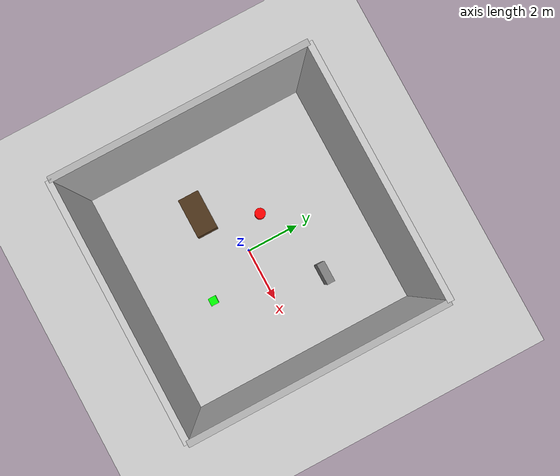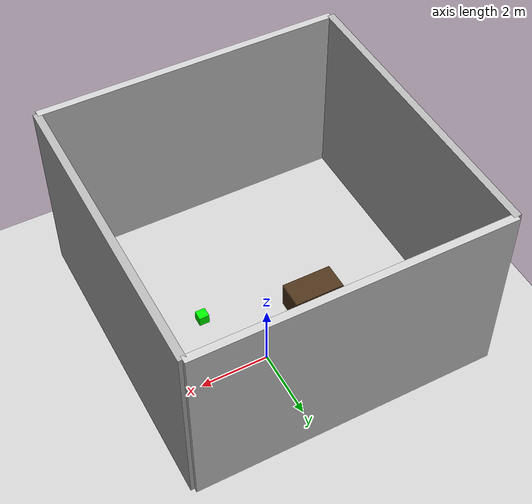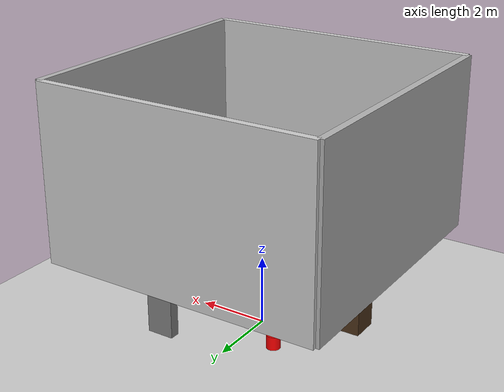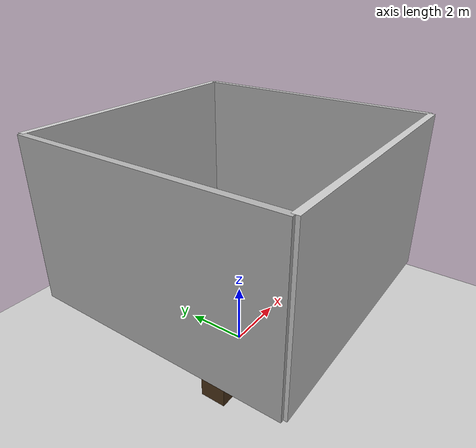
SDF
<?xml version="1.0" ?>
<sdf version="1.7">
  <world name="indoor_lab">
    <!-- Include the sun -->
    <include>
      <uri>model://sun</uri>
    </include>

    <!-- Ground plane -->
    <include>
      <uri>model://ground_plane</uri>
    </include>

    <!-- Lab room with walls -->
    <model name="lab_room">
      <pose>0 0 2.5 0 0 0</pose>
      <static>true</static>

      <!-- Back wall -->
      <link name="back_wall">
        <pose>0 -4 2.5 0 0 0</pose>
        <collision name="back_wall_collision">
          <geometry>
            <box>
              <size>8 0.2 5</size>
            </box>
          </geometry>
        </collision>
        <visual name="back_wall_visual">
          <geometry>
            <box>
              <size>8 0.2 5</size>
            </box>
          </geometry>
          <material>
            <ambient>0.8 0.8 0.8 1</ambient>
            <diffuse>0.8 0.8 0.8 1</diffuse>
          </material>
        </visual>
      </link>

      <!-- Front wall -->
      <link name="front_wall">
        <pose>0 4 2.5 0 0 3.14159</pose>
        <collision name="front_wall_collision">
          <geometry>
            <box>
              <size>8 0.2 5</size>
            </box>
          </geometry>
        </collision>
        <visual name="front_wall_visual">
          <geometry>
            <box>
              <size>8 0.2 5</size>
            </box>
          </geometry>
          <material>
            <ambient>0.8 0.8 0.8 1</ambient>
            <diffuse>0.8 0.8 0.8 1</diffuse>
          </material>
        </visual>
      </link>

      <!-- Left wall -->
      <link name="left_wall">
        <pose>-4 0 2.5 0 0 1.5708</pose>
        <collision name="left_wall_collision">
          <geometry>
            <box>
              <size>8 0.2 5</size>
            </box>
          </geometry>
        </collision>
        <visual name="left_wall_visual">
          <geometry>
            <box>
              <size>8 0.2 5</size>
            </box>
          </geometry>
          <material>
            <ambient>0.7 0.7 0.7 1</ambient>
            <diffuse>0.7 0.7 0.7 1</diffuse>
          </material>
        </visual>
      </link>

      <!-- Right wall -->
      <link name="right_wall">
        <pose>4 0 2.5 0 0 -1.5708</pose>
        <collision name="right_wall_collision">
          <geometry>
            <box>
              <size>8 0.2 5</size>
            </box>
          </geometry>
        </collision>
        <visual name="right_wall_visual">
          <geometry>
            <box>
              <size>8 0.2 5</size>
            </box>
          </geometry>
          <material>
            <ambient>0.7 0.7 0.7 1</ambient>
            <diffuse>0.7 0.7 0.7 1</diffuse>
          </material>
        </visual>
      </link>
    </model>

    <!-- Lab equipment -->
    <model name="workbench">
      <pose>-2 -1 0.5 0 0 0</pose>
      <link name="base">
        <collision name="collision">
          <geometry>
            <box>
              <size>1.5 0.8 0.8</size>
            </box>
          </geometry>
        </collision>
        <visual name="visual">
          <geometry>
            <box>
              <size>1.5 0.8 0.8</size>
            </box>
          </geometry>
          <material>
            <ambient>0.3 0.2 0.1 1</ambient>
            <diffuse>0.3 0.2 0.1 1</diffuse>
          </material>
        </visual>
      </link>
    </model>

    <model name="shelf">
      <pose>2 2 0.6 0 0 0</pose>
      <link name="base">
        <collision name="collision">
          <geometry>
            <box>
              <size>0.8 0.3 1.2</size>
            </box>
          </geometry>
        </collision>
        <visual name="visual">
          <geometry>
            <box>
              <size>0.8 0.3 1.2</size>
            </box>
          </geometry>
          <material>
            <ambient>0.5 0.5 0.5 1</ambient>
            <diffuse>0.5 0.5 0.5 1</diffuse>
          </material>
        </visual>
      </link>
    </model>

    <!-- Navigation obstacles -->
    <model name="obstacle1">
      <pose>-1 1 0.2 0 0 0</pose>
      <link name="base">
        <collision name="collision">
          <geometry>
            <cylinder>
              <radius>0.2</radius>
              <length>0.4</length>
            </cylinder>
          </geometry>
        </collision>
        <visual name="visual">
          <geometry>
            <cylinder>
              <radius>0.2</radius>
              <length>0.4</length>
            </cylinder>
          </geometry>
          <material>
            <ambient>1 0 0 1</ambient>
            <diffuse>1 0 0 1</diffuse>
          </material>
        </visual>
      </link>
    </model>

    <model name="obstacle2">
      <pose>1 -2 0.15 0 0 0</pose>
      <link name="base">
        <collision name="collision">
          <geometry>
            <box>
              <size>0.3 0.3 0.3</size>
            </box>
          </geometry>
        </collision>
        <visual name="visual">
          <geometry>
            <box>
              <size>0.3 0.3 0.3</size>
            </box>
          </geometry>
          <material>
            <ambient>0 1 0 1</ambient>
            <diffuse>0 1 0 1</diffuse>
          </material>
        </visual>
      </link>
    </model>
  </world>
</sdf>
